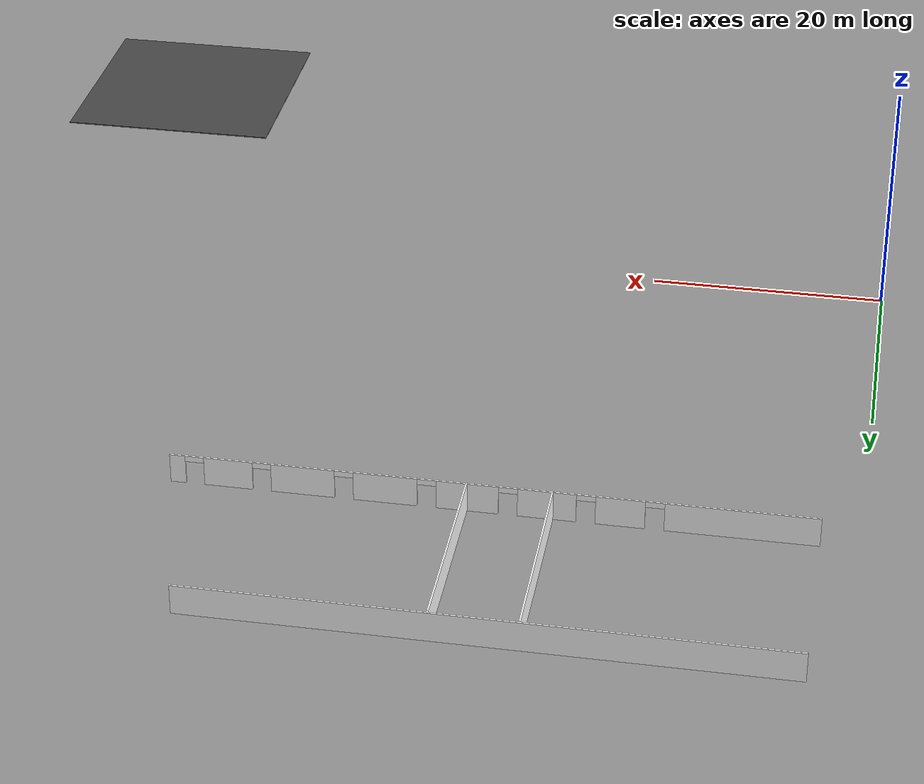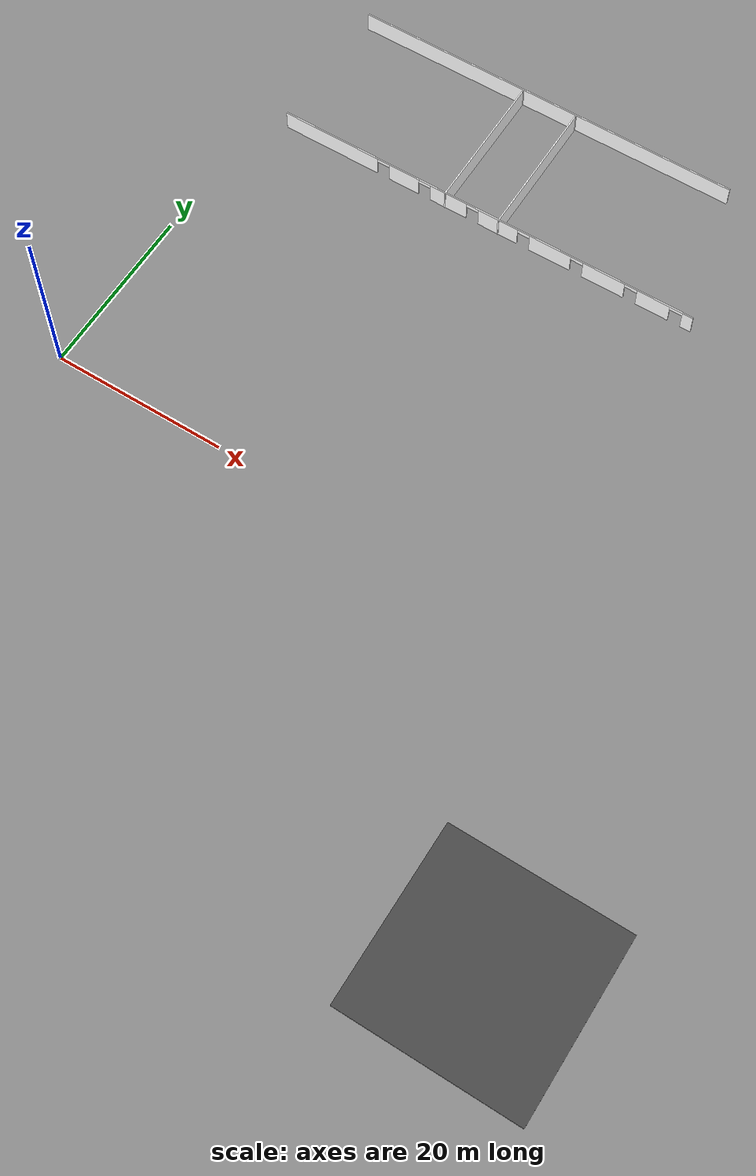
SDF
<sdf version="1.6">
 <world name="default">
  <model name="mainoffice">
   <pose>42.7555 15.4488 0 0 -0 0</pose>
   <link name="Wall_114">
    <pose>-14.0456 22.5815 0 0 -0 0</pose>
    <visual name="Wall_114_Visual_0">
     <pose>-19.5315 0 1.25 0 -0 0</pose>
     <geometry><box><size>11.937 0.15 2.5</size></box></geometry>
     <material>
      <script>
       <uri>model://office_env/materials/scripts</uri>
       <uri>model://office_env/materials/textures</uri>
       <name>wall</name>
      </script>
      <ambient>1 1 1 1</ambient>
     </material>
    </visual>
    <collision name="Wall_114_Collision_0">
     <geometry><box><size>11.937 0.15 2.5</size></box></geometry>
     <pose>-19.5315 0 1.25 0 -0 0</pose>
    </collision>
    <visual name="Wall_114_Visual_1">
     <pose>-10.1461 0 1.25 0 -0 0</pose>
     <geometry><box><size>3.83377 0.15 2.5</size></box></geometry>
     <material>
      <script>
       <uri>model://office_env/materials/scripts</uri>
       <uri>model://office_env/materials/textures</uri>
       <name>wall</name>
      </script>
      <ambient>1 1 1 1</ambient>
     </material>
    </visual>
    <collision name="Wall_114_Collision_1">
     <geometry><box><size>3.83377 0.15 2.5</size></box></geometry>
     <pose>-10.1461 0 1.25 0 -0 0</pose>
    </collision>
    <visual name="Wall_114_Visual_2">
     <pose>-4.44505 0 1.25 0 -0 0</pose>
     <geometry><box><size>4.56834 0.15 2.5</size></box></geometry>
     <material>
      <script>
       <uri>model://office_env/materials/scripts</uri>
       <uri>model://office_env/materials/textures</uri>
       <name>wall</name>
      </script>
      <ambient>1 1 1 1</ambient>
     </material>
    </visual>
    <collision name="Wall_114_Collision_2">
     <geometry><box><size>4.56834 0.15 2.5</size></box></geometry>
     <pose>-4.44505 0 1.25 0 -0 0</pose>
    </collision>
    <visual name="Wall_114_Visual_3">
     <pose>1.7851 0 1.25 0 -0 0</pose>
     <geometry><box><size>4.89198 0.15 2.5</size></box></geometry>
     <material>
      <script>
       <uri>model://office_env/materials/scripts</uri>
       <uri>model://office_env/materials/textures</uri>
       <name>wall</name>
      </script>
      <ambient>1 1 1 1</ambient>
     </material>
    </visual>
    <collision name="Wall_114_Collision_3">
     <geometry><box><size>4.89198 0.15 2.5</size></box></geometry>
     <pose>1.7851 0 1.25 0 -0 0</pose>
    </collision>
    <visual name="Wall_114_Visual_4">
     <pose>8.258 0 1.25 0 -0 0</pose>
     <geometry><box><size>5.0538 0.15 2.5</size></box></geometry>
     <material>
      <script>
       <uri>model://office_env/materials/scripts</uri>
       <uri>model://office_env/materials/textures</uri>
       <name>wall</name>
      </script>
      <ambient>1 1 1 1</ambient>
     </material>
    </visual>
    <collision name="Wall_114_Collision_4">
     <geometry><box><size>5.0538 0.15 2.5</size></box></geometry>
     <pose>8.258 0 1.25 0 -0 0</pose>
    </collision>
    <visual name="Wall_114_Visual_5">
     <pose>14.8201 0 1.25 0 -0 0</pose>
     <geometry><box><size>5.07045 0.15 2.5</size></box></geometry>
     <material>
      <script>
       <uri>model://office_env/materials/scripts</uri>
       <uri>model://office_env/materials/textures</uri>
       <name>wall</name>
      </script>
      <ambient>1 1 1 1</ambient>
     </material>
    </visual>
    <collision name="Wall_114_Collision_5">
     <geometry><box><size>5.07045 0.15 2.5</size></box></geometry>
     <pose>14.8201 0 1.25 0 -0 0</pose>
    </collision>
    <visual name="Wall_114_Visual_6">
     <pose>20.8037 0 1.25 0 -0 0</pose>
     <geometry><box><size>3.89677 0.15 2.5</size></box></geometry>
     <material>
      <script>
       <uri>model://office_env/materials/scripts</uri>
       <uri>model://office_env/materials/textures</uri>
       <name>wall</name>
      </script>
      <ambient>1 1 1 1</ambient>
     </material>
    </visual>
    <collision name="Wall_114_Collision_6">
     <geometry><box><size>3.89677 0.15 2.5</size></box></geometry>
     <pose>20.8037 0 1.25 0 -0 0</pose>
    </collision>
    <visual name="Wall_114_Visual_7">
     <pose>24.8761 0 1.25 0 -0 0</pose>
     <geometry><box><size>1.24787 0.15 2.5</size></box></geometry>
     <material>
      <script>
       <uri>model://office_env/materials/scripts</uri>
       <uri>model://office_env/materials/textures</uri>
       <name>wall</name>
      </script>
      <ambient>1 1 1 1</ambient>
     </material>
    </visual>
    <collision name="Wall_114_Collision_7">
     <geometry><box><size>1.24787 0.15 2.5</size></box></geometry>
     <pose>24.8761 0 1.25 0 -0 0</pose>
    </collision>
    <visual name="Wall_114_Visual_8">
     <pose>-12.813 0 2.25 0 -0 0</pose>
     <geometry><box><size>1.5 0.15 0.5</size></box></geometry>
     <material>
      <script>
       <uri>model://office_env/materials/scripts</uri>
       <uri>model://office_env/materials/textures</uri>
       <name>wall</name>
      </script>
      <ambient>1 1 1 1</ambient>
     </material>
    </visual>
    <collision name="Wall_114_Collision_8">
     <geometry><box><size>1.5 0.15 0.5</size></box></geometry>
     <pose>-12.813 0 2.25 0 -0 0</pose>
    </collision>
    <visual name="Wall_114_Visual_9">
     <pose>-7.47922 0 2.25 0 -0 0</pose>
     <geometry><box><size>1.5 0.15 0.5</size></box></geometry>
     <material>
      <script>
       <uri>model://office_env/materials/scripts</uri>
       <uri>model://office_env/materials/textures</uri>
       <name>wall</name>
      </script>
      <ambient>1 1 1 1</ambient>
     </material>
    </visual>
    <collision name="Wall_114_Collision_9">
     <geometry><box><size>1.5 0.15 0.5</size></box></geometry>
     <pose>-7.47922 0 2.25 0 -0 0</pose>
    </collision>
    <visual name="Wall_114_Visual_10">
     <pose>-1.41089 0 2.25 0 -0 0</pose>
     <geometry><box><size>1.5 0.15 0.5</size></box></geometry>
     <material>
      <script>
       <uri>model://office_env/materials/scripts</uri>
       <uri>model://office_env/materials/textures</uri>
       <name>wall</name>
      </script>
      <ambient>1 1 1 1</ambient>
     </material>
    </visual>
    <collision name="Wall_114_Collision_10">
     <geometry><box><size>1.5 0.15 0.5</size></box></geometry>
     <pose>-1.41089 0 2.25 0 -0 0</pose>
    </collision>
    <visual name="Wall_114_Visual_11">
     <pose>4.98109 0 2.25 0 -0 0</pose>
     <geometry><box><size>1.5 0.15 0.5</size></box></geometry>
     <material>
      <script>
       <uri>model://office_env/materials/scripts</uri>
       <uri>model://office_env/materials/textures</uri>
       <name>wall</name>
      </script>
      <ambient>1 1 1 1</ambient>
     </material>
    </visual>
    <collision name="Wall_114_Collision_11">
     <geometry><box><size>1.5 0.15 0.5</size></box></geometry>
     <pose>4.98109 0 2.25 0 -0 0</pose>
    </collision>
    <visual name="Wall_114_Visual_12">
     <pose>11.5349 0 2.25 0 -0 0</pose>
     <geometry><box><size>1.5 0.15 0.5</size></box></geometry>
     <material>
      <script>
       <uri>model://office_env/materials/scripts</uri>
       <uri>model://office_env/materials/textures</uri>
       <name>wall</name>
      </script>
      <ambient>1 1 1 1</ambient>
     </material>
    </visual>
    <collision name="Wall_114_Collision_12">
     <geometry><box><size>1.5 0.15 0.5</size></box></geometry>
     <pose>11.5349 0 2.25 0 -0 0</pose>
    </collision>
    <visual name="Wall_114_Visual_13">
     <pose>18.1054 0 2.25 0 -0 0</pose>
     <geometry><box><size>1.5 0.15 0.5</size></box></geometry>
     <material>
      <script>
       <uri>model://office_env/materials/scripts</uri>
       <uri>model://office_env/materials/textures</uri>
       <name>wall</name>
      </script>
      <ambient>1 1 1 1</ambient>
     </material>
    </visual>
    <collision name="Wall_114_Collision_13">
     <geometry><box><size>1.5 0.15 0.5</size></box></geometry>
     <pose>18.1054 0 2.25 0 -0 0</pose>
    </collision>
    <visual name="Wall_114_Visual_14">
     <pose>23.5021 0 2.25 0 -0 0</pose>
     <geometry><box><size>1.5 0.15 0.5</size></box></geometry>
     <material>
      <script>
       <uri>model://office_env/materials/scripts</uri>
       <uri>model://office_env/materials/textures</uri>
       <name>wall</name>
      </script>
      <ambient>1 1 1 1</ambient>
     </material>
    </visual>
    <collision name="Wall_114_Collision_14">
     <geometry><box><size>1.5 0.15 0.5</size></box></geometry>
     <pose>23.5021 0 2.25 0 -0 0</pose>
    </collision>
   </link>
   <link name="Wall_137">
    <collision name="Wall_137_Collision">
     <geometry><box><size>16.75 0.15 2.5</size></box></geometry>
     <pose>0 0 1.25 0 -0 0</pose>
    </collision>
    <visual name="Wall_137_Visual">
     <pose>0 0 1.25 0 -0 0</pose>
     <geometry><box><size>16.75 0.15 2.5</size></box></geometry>
     <material>
      <script>
       <uri>model://office_env/materials/scripts</uri>
       <uri>model://office_env/materials/textures</uri>
       <name>wall</name>
      </script>
      <ambient>1 1 1 1</ambient>
     </material>
    </visual>
    <pose>-18.9193 30.8236 0 0 -0 1.5708</pose>
   </link>
   <link name="Wall_138">
    <collision name="Wall_138_Collision">
     <geometry><box><size>0.25 0.15 2.5</size></box></geometry>
     <pose>0 0 1.25 0 -0 0</pose>
    </collision>
    <visual name="Wall_138_Visual">
     <pose>0 0 1.25 0 -0 0</pose>
     <geometry><box><size>0.25 0.15 2.5</size></box></geometry>
     <material>
      <script>
       <uri>model://office_env/materials/scripts</uri>
       <uri>model://office_env/materials/textures</uri>
       <name>wall</name>
      </script>
      <ambient>1 1 1 1</ambient>
     </material>
    </visual>
    <pose>-18.9193 39.1736 0 0 -0 1.5708</pose>
   </link>
   <link name="Wall_140">
    <collision name="Wall_140_Collision">
     <geometry><box><size>16.75 0.15 2.5</size></box></geometry>
     <pose>0 0 1.25 0 -0 0</pose>
    </collision>
    <visual name="Wall_140_Visual">
     <pose>0 0 1.25 0 -0 0</pose>
     <geometry><box><size>16.75 0.15 2.5</size></box></geometry>
     <material>
      <script>
       <uri>model://office_env/materials/scripts</uri>
       <uri>model://office_env/materials/textures</uri>
       <name>wall</name>
      </script>
      <ambient>1 1 1 1</ambient>
     </material>
    </visual>
    <pose>-12.1935 30.816 0 0 -0 1.5708</pose>
   </link>
   <link name="Wall_141">
    <collision name="Wall_141_Collision">
     <geometry><box><size>0.25 0.15 2.5</size></box></geometry>
     <pose>0 0 1.25 0 -0 0</pose>
    </collision>
    <visual name="Wall_141_Visual">
     <pose>0 0 1.25 0 -0 0</pose>
     <geometry><box><size>0.25 0.15 2.5</size></box></geometry>
     <material>
      <script>
       <uri>model://office_env/materials/scripts</uri>
       <uri>model://office_env/materials/textures</uri>
       <name>wall</name>
      </script>
      <ambient>1 1 1 1</ambient>
     </material>
    </visual>
    <pose>-12.1935 39.166 0 0 -0 1.5708</pose>
   </link>
   <link name="Wall_38">
    <collision name="Wall_38_Collision">
     <geometry><box><size>46.5 0.15 2.5</size></box></geometry>
     <pose>0 0 1.25 0 -0 0</pose>
    </collision>
    <visual name="Wall_38_Visual">
     <pose>0 0 1.25 0 -0 0</pose>
     <geometry><box><size>46.5 0.15 2.5</size></box></geometry>
     <material>
      <script>
       <uri>model://office_env/materials/scripts</uri>
       <uri>model://office_env/materials/textures</uri>
       <name>wall</name>
      </script>
      <ambient>1 1 1 1</ambient>
     </material>
    </visual>
    <pose>-16.2741 39.325 0 0 -0 0</pose>
   </link>
   <static>1</static>
  </model>
  <model name="asphalt_plane">
   <static>1</static>
   <link name="link">
    <collision name="collision"><geometry><box><size>20 20 0.1</size></box></geometry></collision>
    <visual name="visual">
     <cast_shadows>0</cast_shadows>
     <geometry><box><size>20 20 0.1</size></box></geometry>
     <material>
      <script>
       <uri>model://asphalt_plane/materials/scripts</uri>
       <uri>model://asphalt_plane/materials/textures</uri>
       <name>vrc/asphalt</name>
      </script>
     </material>
    </visual>
   </link>
   <pose>70.7475 -31.5972 0 0 -0 0</pose>
  </model>
 </world>
</sdf>
